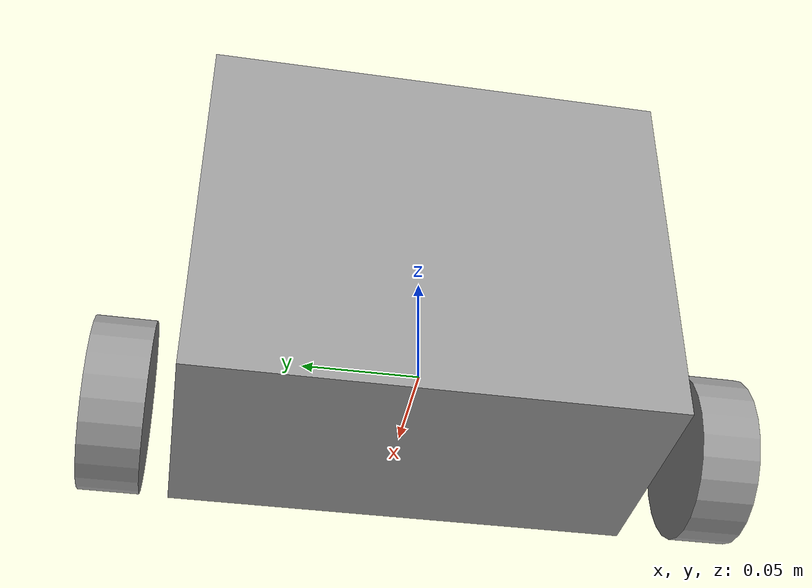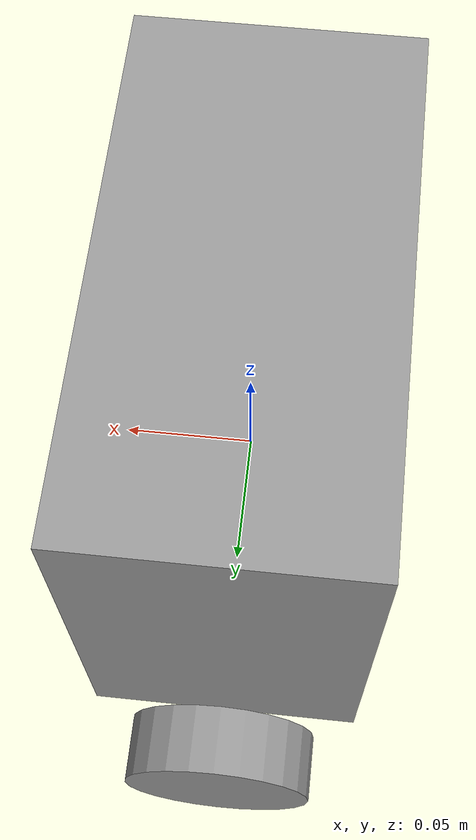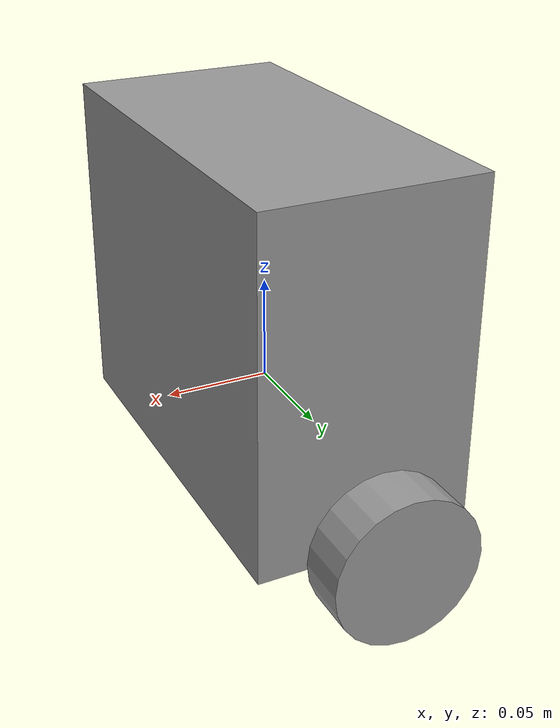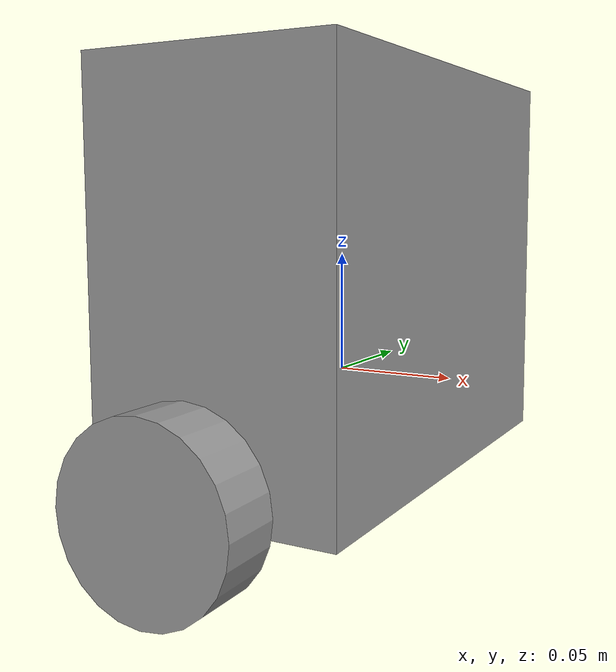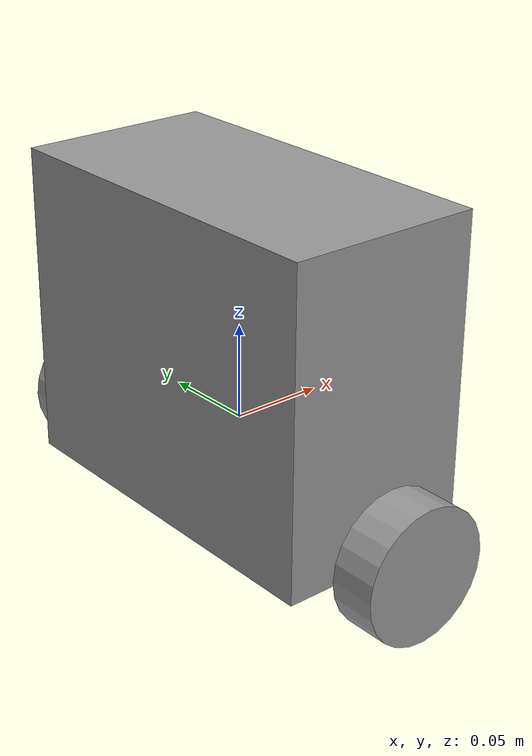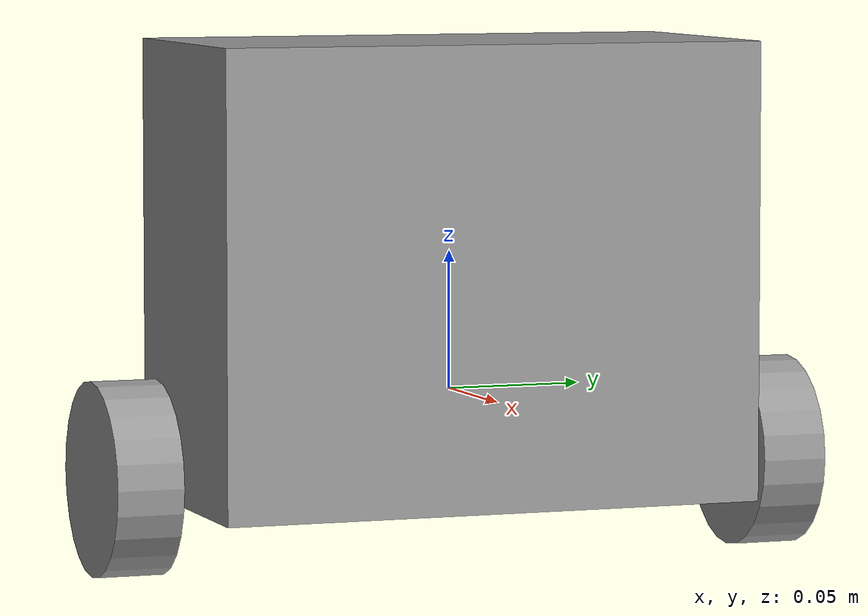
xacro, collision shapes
<?xml version="1.0" ?>
<robot name="2wheel" xmlns:xacro="http://www.ros.org/wiki/xacro">

  <material name="black">
    <color rgba="0.0 0.0 0.0 1.0"/>
  </material>
  <material name="blue">
    <color rgba="0.203125 0.23828125 0.28515625 1.0"/>
  </material>
  <material name="green">
    <color rgba="0.0 0.8 0.0 1.0"/>
  </material>
  <material name="grey">
    <color rgba="0.6 0.6 0.6 1.0"/>
  </material>
  <material name="orange">
    <color rgba="1.0 0.423529411765 0.0392156862745 1.0"/>
  </material>
  <material name="brown">
    <color rgba="0.870588235294 0.811764705882 0.764705882353 1.0"/>
  </material>
  <material name="red">
    <color rgba="0.80078125 0.12890625 0.1328125 1.0"/>
  </material>
  <material name="white">
    <color rgba="1.0 1.0 1.0 1.0"/>
  </material>
  <material name="plank">
    <color rgba="0.9098 0.77255 0.2314 1.0"/>
  </material>

<!-- Start: For URDF to Gazebo compatibility -->
	<!-- LINKS -->
  <gazebo reference="link_chassis">
    <material>Gazebo/Grey</material>
  </gazebo>
  <gazebo reference="link_left_wheel">
    <material>Gazebo/Black</material>
    <mu1>0.4</mu1>
    <mu2>0.4</mu2>
  </gazebo>
  <gazebo reference="link_right_wheel">
    <material>Gazebo/Black</material>
    <mu1>0.4</mu1>
    <mu2>0.4</mu2>
  </gazebo>
	<!-- JOINTS -->
  <gazebo reference="joint_right_wheel">
  </gazebo>
  <gazebo reference="joint_left_wheel">
  </gazebo>

	<!-- PLUGINS -->
  <gazebo>
    <plugin filename="libgazebo_ros_diff_drive.so" name="differential_drive_controller">
      <legacyMode>false</legacyMode>
      <alwaysOn>true</alwaysOn>
      <updateRate>10</updateRate>
      <leftJoint>joint_left_wheel</leftJoint>
      <rightJoint>joint_right_wheel</rightJoint>
      <wheelSeparation>0.244</wheelSeparation>
      <wheelDiameter>0.07</wheelDiameter>
      <wheelTorque>0.8</wheelTorque>
      <commandTopic>cmd_vel</commandTopic>
      <odometryTopic>odom</odometryTopic>
      <odometryFrame>odom</odometryFrame>
      <robotBaseFrame>link_chassis</robotBaseFrame>
    </plugin>
  </gazebo>

  <gazebo>
      <plugin name="imu_plugin" filename="libgazebo_ros_imu.so">
          <alwaysOn>true</alwaysOn>
					<updateRate>100</updateRate>
          <bodyName>dummy_link</bodyName>
          <topicName>imu</topicName>
          <serviceName>imu_service</serviceName>
          <gaussianNoise>0.0</gaussianNoise>
          <rpyOffsets>0 0 0</rpyOffsets>
					<xyzOffset>0 0 0.0434</xyzOffset>

          <accelDrift>0.5 0.5 0.5</accelDrift>
          <accelGaussianNoise>0.35 0.35 0.3</accelGaussianNoise>
          <rateDrift>0.0 0.0 0.0</rateDrift>
          <rateGaussianNoise>0.00 0.00 0.00</rateGaussianNoise>
          <headingDrift>0.0</headingDrift>
          <headingGaussianNoise>0.00</headingGaussianNoise>
      </plugin>
   </gazebo>
<!-- xyzOffset is a workaround for problem. check generated code with gz sdf -p 2wheel.xacro-->

<!-- End: For URDF to Gazebo compatibility -->

	<link name="dummy_link"/>
	<link name="imu_link">
    <inertial>
      <mass value="0.0001"/>
      <origin rpy="0 0 0" xyz="0 0 0"/>
      <inertia ixx="0.000001" ixy="0" ixz="0" iyy="0.000001" iyz="0" izz="0.000001"/>
    </inertial>
  </link>

  <link name="link_chassis">
    <!-- pose and inertial -->
    <pose>0 0 0.25 0 0 0</pose>
    <inertial>
      <mass value="0.8369"/>
      <origin rpy="0 0 0" xyz="-0.000631 0.000044 0.016159"/>
      <inertia ixx="6.495E-3" ixy="979.958E-9" ixz="-1.335E-5" iyy=" 2.282E-3" iyz="1000.67e-9" izz="5.266E-3"/>
    </inertial>
    <!-- body -->
    <collision name="collision_chassis">
      <origin rpy="0 0 0" xyz="0 0 0.0434"/>
      <geometry>
        <box size="0.10311 0.200188 0.166021"/>
      </geometry>
    </collision>
    <visual>
			<origin rpy="0 0 0" xyz="0 0 0"/>
      <geometry>
				<mesh filename="package://robot_description/stl/Real/Base.stl" scale="0.001 0.001 0.001"/>
      </geometry>
      <material name="grey"/>
    </visual>
  </link>

	<joint name="base_joint" type="fixed">
    <origin rpy="0 0 0" xyz="0 0 0"/>
		<child link="link_chassis"/>
    <parent link="dummy_link"/>
  </joint>
	<joint name="imu_joint" type="fixed">
    <origin rpy="0 0 0" xyz="0 0 0.0434"/>
		<child link="imu_link"/>
    <parent link="link_chassis"/>
  </joint>

  <link name="link_left_wheel">
    <inertial>
      <mass value="0.087306"/>
      <origin rpy="0 0 0" xyz="0 -0.38566 0"/>
      <inertia ixx="2.776E-5" ixy="15.762E-9" ixz="-0.097E-9" iyy="4.868E-5" iyz="-0.371E-9" izz="2.774E-5"/>
    </inertial>
    <collision name="link_left_wheel_collision">
      <origin rpy="0 1.5707 1.5707" xyz="0 0.01205 0"/>
      <geometry>
        <cylinder length="0.0241" radius="0.035"/>
      </geometry>
    </collision>
    <visual name="link_left_wheel_visual">
      <origin rpy="0 0 3.1415927" xyz="0 0 0"/>
      <geometry>
				<mesh filename="package://robot_description/stl/Real/Wheel.stl" scale="0.001 0.001 0.001"/>
      </geometry>
      <material name="grey"/>
    </visual>
  </link>

  <joint name="joint_left_wheel" type="revolute">  <!-- We set revolute with infinite limits as a workaround to sdf conversion problems -->
    <origin rpy="0 0 0" xyz="-0.000944 0.110418 -0.027797"/>
    <child link="link_left_wheel"/>
    <parent link="link_chassis"/>
    <axis rpy="0 0 0" xyz="0 1 0"/>
		<limit effort="0.8" velocity="30" lower="-1e+16" upper="1e+16" />
    <dynamics damping="0.0005" friction="0.0005"/>  <!-- damping coefficient: [N*m*s/rad] 0.0005-->
		<safety_controller k_velocity="0.026"/>  <!-- Kv en este caso: Torque/vel (http://wiki.ros.org/pr2_controller_manager/safety_limits) -->
  </joint>

  <link name="link_right_wheel">
    <inertial>
      <mass value="0.087306"/>
      <origin rpy="0 0 0" xyz="0 +0.38566 0"/>
      <inertia ixx="2.776E-5" ixy="15.762E-9" ixz="-0.097E-9" iyy="4.868E-5" iyz="0.371E-9" izz="2.774E-5"/>
    </inertial>
    <collision name="link_right_wheel_collision">
      <origin rpy="0 1.5707 1.5707" xyz="0 -0.01205 0"/>
      <geometry>
        <cylinder length="0.0241" radius="0.035"/>
      </geometry>
    </collision>
    <visual name="link_right_wheel_visual">
      <origin rpy="0 0 0" xyz="0 0 0"/>
      <geometry>
				<mesh filename="package://robot_description/stl/Real/Wheel.stl" scale="0.001 0.001 0.001"/>
      </geometry>
      <material name="grey"/>
    </visual>
  </link>

  <joint name="joint_right_wheel" type="revolute">  <!-- We set revolute with infinite limits as a workaround to sdf conversion problems -->
    <origin rpy="0 0 0" xyz="-0.000944 -0.110418 -0.027797"/>
    <child link="link_right_wheel"/>
    <parent link="link_chassis"/>
    <axis rpy="0 0 0" xyz="0 1 0"/>
		<limit effort="0.8" velocity="30" lower="-1e+16" upper="1e+16" />
  	<dynamics damping="0.0005" friction="0.0005"/>  <!-- damping coefficient: [N*m*s/rad] -->
		<safety_controller k_velocity="0.026"/>  <!-- Kv en este caso: Torque/vel (http://wiki.ros.org/pr2_controller_manager/safety_limits) -->
  </joint>

	<!-- TRANSMISION (TODO)-->
</robot>
